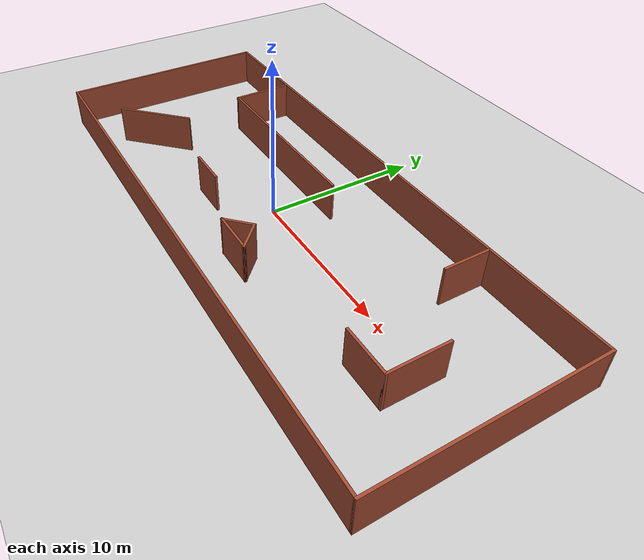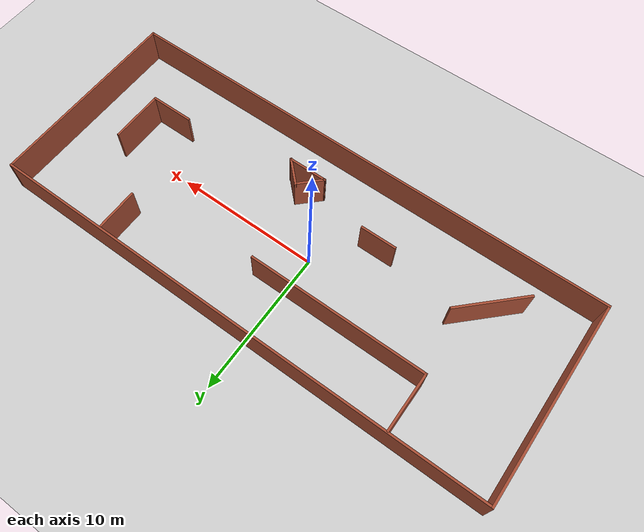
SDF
<sdf version="1.7">
 <world name="default">
  <light name="sun" type="directional">
   <pose>0 0 10 0 -0 0</pose>
   <diffuse>0.8 0.8 0.8 1</diffuse>
   <specular>0.2 0.2 0.2 1</specular>
   <attenuation>
    <range>1000</range>
    <constant>0.9</constant>
    <linear>0.01</linear>
    <quadratic>0.001</quadratic>
   </attenuation>
   <direction>-0.5 0.1 -0.9</direction>
   <spot><inner_angle>0</inner_angle><outer_angle>0</outer_angle><falloff>0</falloff></spot>
  </light>
  <model name="ground_plane">
   <static>1</static>
   <link name="link">
    <collision name="collision">
     <geometry><plane><normal>0 0 1</normal><size>100 100</size></plane></geometry>
     <surface>
      <contact><collide_bitmask>65535</collide_bitmask></contact>
      <friction><ode><mu>100</mu><mu2>50</mu2></ode></friction>
     </surface>
    </collision>
    <visual name="visual">
     <cast_shadows>0</cast_shadows>
     <geometry><plane><normal>0 0 1</normal><size>100 100</size></plane></geometry>
     <material>
      <script><uri>file://media/materials/scripts/gazebo.material</uri><name>Gazebo/Grey</name></script>
     </material>
    </visual>
   </link>
  </model>
  <gravity>0 0 -9.8</gravity>
  <magnetic_field>6e-06 2.3e-05 -4.2e-05</magnetic_field>
  <atmosphere type="adiabatic"/>
  <physics type="ode">
   <max_step_size>0.001</max_step_size>
   <real_time_factor>1</real_time_factor>
   <real_time_update_rate>1000</real_time_update_rate>
  </physics>
  <scene><ambient>0.4 0.4 0.4 1</ambient><background>0.7 0.7 0.7 1</background><shadows>1</shadows></scene>
  <spherical_coordinates>
   <surface_model>EARTH_WGS84</surface_model>
   <latitude_deg>0</latitude_deg>
   <longitude_deg>0</longitude_deg>
   <elevation>0</elevation>
   <heading_deg>0</heading_deg>
  </spherical_coordinates>
  <model name="mapa_03">
   <pose>1.17897 -0.178411 0 0 -0 0</pose>
   <link name="Wall_1">
    <collision name="Wall_1_Collision">
     <geometry><box><size>35 0.15 2.5</size></box></geometry>
     <pose>0 0 1.25 0 -0 0</pose>
    </collision>
    <visual name="Wall_1_Visual">
     <pose>0 0 1.25 0 -0 0</pose>
     <geometry><box><size>35 0.15 2.5</size></box></geometry>
     <material>
      <script><uri>file://media/materials/scripts/gazebo.material</uri><name>Gazebo/Bricks</name></script>
      <ambient>1 1 1 1</ambient>
     </material>
     <meta><layer>0</layer></meta>
    </visual>
    <pose>0 -6.8 0 0 -0 0</pose>
   </link>
   <link name="Wall_10">
    <collision name="Wall_10_Collision">
     <geometry><box><size>5 0.15 2.5</size></box></geometry>
     <pose>0 0 1.25 0 -0 0</pose>
    </collision>
    <visual name="Wall_10_Visual">
     <pose>0 0 1.25 0 -0 0</pose>
     <geometry><box><size>5 0.15 2.5</size></box></geometry>
     <material>
      <script><uri>file://media/materials/scripts/gazebo.material</uri><name>Gazebo/Bricks</name></script>
      <ambient>1 1 1 1</ambient>
     </material>
     <meta><layer>0</layer></meta>
    </visual>
    <pose>-11.8385 -3.05397 0 0 -0 0.785398</pose>
   </link>
   <link name="Wall_13">
    <collision name="Wall_13_Collision">
     <geometry><box><size>3 0.15 2.5</size></box></geometry>
     <pose>0 0 1.25 0 -0 0</pose>
    </collision>
    <visual name="Wall_13_Visual">
     <pose>0 0 1.25 0 -0 0</pose>
     <geometry><box><size>3 0.15 2.5</size></box></geometry>
     <material>
      <script><uri>file://media/materials/scripts/gazebo.material</uri><name>Gazebo/Bricks</name></script>
      <ambient>1 1 1 1</ambient>
     </material>
     <meta><layer>0</layer></meta>
    </visual>
    <pose>9.80309 5.29568 0 0 -0 -1.5708</pose>
   </link>
   <link name="Wall_16">
    <collision name="Wall_16_Collision">
     <geometry><box><size>2 0.15 2.5</size></box></geometry>
     <pose>0 0 1.25 0 -0 0</pose>
    </collision>
    <visual name="Wall_16_Visual">
     <pose>0 0 1.25 0 -0 0</pose>
     <geometry><box><size>2 0.15 2.5</size></box></geometry>
     <material>
      <script><uri>file://media/materials/scripts/gazebo.material</uri><name>Gazebo/Bricks</name></script>
      <ambient>1 1 1 1</ambient>
     </material>
     <meta><layer>0</layer></meta>
    </visual>
    <pose>1.39511 -3.4134 0 0 -0 0.785398</pose>
   </link>
   <link name="Wall_17">
    <collision name="Wall_17_Collision">
     <geometry><box><size>2 0.15 2.5</size></box></geometry>
     <pose>0 0 1.25 0 -0 0</pose>
    </collision>
    <visual name="Wall_17_Visual">
     <pose>0 0 1.25 0 -0 0</pose>
     <geometry><box><size>2 0.15 2.5</size></box></geometry>
     <material>
      <script><uri>file://media/materials/scripts/gazebo.material</uri><name>Gazebo/Bricks</name></script>
      <ambient>1 1 1 1</ambient>
     </material>
     <meta><layer>0</layer></meta>
    </visual>
    <pose>2.70326 -3.4134 0 0 -0 -0.785398</pose>
   </link>
   <link name="Wall_18">
    <collision name="Wall_18_Collision">
     <geometry><box><size>2.76629 0.15 2.5</size></box></geometry>
     <pose>0 0 1.25 0 -0 0</pose>
    </collision>
    <visual name="Wall_18_Visual">
     <pose>0 0 1.25 0 -0 0</pose>
     <geometry><box><size>2.76629 0.15 2.5</size></box></geometry>
     <material>
      <script><uri>file://media/materials/scripts/gazebo.material</uri><name>Gazebo/Bricks</name></script>
      <ambient>1 1 1 1</ambient>
     </material>
     <meta><layer>0</layer></meta>
    </visual>
    <pose>2.04919 -4.06747 0 0 -0 3.14159</pose>
   </link>
   <link name="Wall_2">
    <collision name="Wall_2_Collision">
     <geometry><box><size>13.75 0.15 2.5</size></box></geometry>
     <pose>0 0 1.25 0 -0 0</pose>
    </collision>
    <visual name="Wall_2_Visual">
     <pose>0 0 1.25 0 -0 0</pose>
     <geometry><box><size>13.75 0.15 2.5</size></box></geometry>
     <material>
      <script><uri>file://media/materials/scripts/gazebo.material</uri><name>Gazebo/Bricks</name></script>
      <ambient>1 1 1 1</ambient>
     </material>
     <meta><layer>0</layer></meta>
    </visual>
    <pose>17.425 0 0 0 -0 1.5708</pose>
   </link>
   <link name="Wall_21">
    <collision name="Wall_21_Collision">
     <geometry><box><size>3.75 0.15 2.5</size></box></geometry>
     <pose>0 0 1.25 0 -0 0</pose>
    </collision>
    <visual name="Wall_21_Visual">
     <pose>0 0 1.25 0 -0 0</pose>
     <geometry><box><size>3.75 0.15 2.5</size></box></geometry>
     <material>
      <script><uri>file://media/materials/scripts/gazebo.material</uri><name>Gazebo/Bricks</name></script>
      <ambient>1 1 1 1</ambient>
     </material>
     <meta><layer>0</layer></meta>
    </visual>
    <pose>13.525 -0.797043 0 0 -0 -1.5708</pose>
   </link>
   <link name="Wall_22">
    <collision name="Wall_22_Collision">
     <geometry><box><size>3 0.15 2.5</size></box></geometry>
     <pose>0 0 1.25 0 -0 0</pose>
    </collision>
    <visual name="Wall_22_Visual">
     <pose>0 0 1.25 0 -0 0</pose>
     <geometry><box><size>3 0.15 2.5</size></box></geometry>
     <material>
      <script><uri>file://media/materials/scripts/gazebo.material</uri><name>Gazebo/Bricks</name></script>
      <ambient>1 1 1 1</ambient>
     </material>
     <meta><layer>0</layer></meta>
    </visual>
    <pose>12.1 -2.59704 0 0 -0 3.14159</pose>
   </link>
   <link name="Wall_24">
    <collision name="Wall_24_Collision">
     <geometry><box><size>2.5 0.15 2.5</size></box></geometry>
     <pose>0 0 1.25 0 -0 0</pose>
    </collision>
    <visual name="Wall_24_Visual">
     <pose>0 0 1.25 0 -0 0</pose>
     <geometry><box><size>2.5 0.15 2.5</size></box></geometry>
     <material>
      <script><uri>file://media/materials/scripts/gazebo.material</uri><name>Gazebo/Bricks</name></script>
      <ambient>1 1 1 1</ambient>
     </material>
     <meta><layer>0</layer></meta>
    </visual>
    <pose>-4.23321 -2.66501 0 0 -0 0</pose>
   </link>
   <link name="Wall_4">
    <collision name="Wall_4_Collision">
     <geometry><box><size>35 0.15 2.5</size></box></geometry>
     <pose>0 0 1.25 0 -0 0</pose>
    </collision>
    <visual name="Wall_4_Visual">
     <pose>0 0 1.25 0 -0 0</pose>
     <geometry><box><size>35 0.15 2.5</size></box></geometry>
     <material>
      <script><uri>file://media/materials/scripts/gazebo.material</uri><name>Gazebo/Bricks</name></script>
      <ambient>1 1 1 1</ambient>
     </material>
     <meta><layer>0</layer></meta>
    </visual>
    <pose>0 6.8 0 0 -0 3.14159</pose>
   </link>
   <link name="Wall_5">
    <collision name="Wall_5_Collision">
     <geometry><box><size>13.75 0.15 2.5</size></box></geometry>
     <pose>0 0 1.25 0 -0 0</pose>
    </collision>
    <visual name="Wall_5_Visual">
     <pose>0 0 1.25 0 -0 0</pose>
     <geometry><box><size>13.75 0.15 2.5</size></box></geometry>
     <material>
      <script><uri>file://media/materials/scripts/gazebo.material</uri><name>Gazebo/Bricks</name></script>
      <ambient>1 1 1 1</ambient>
     </material>
     <meta><layer>0</layer></meta>
    </visual>
    <pose>-17.425 0 0 0 -0 -1.5708</pose>
   </link>
   <link name="Wall_7">
    <collision name="Wall_7_Collision">
     <geometry><box><size>4 0.15 2.5</size></box></geometry>
     <pose>0 0 1.25 0 -0 0</pose>
    </collision>
    <visual name="Wall_7_Visual">
     <pose>0 0 1.25 0 -0 0</pose>
     <geometry><box><size>4 0.15 2.5</size></box></geometry>
     <material>
      <script><uri>file://media/materials/scripts/gazebo.material</uri><name>Gazebo/Bricks</name></script>
      <ambient>1 1 1 1</ambient>
     </material>
     <meta><layer>0</layer></meta>
    </visual>
    <pose>-11.018 4.79568 0 0 -0 -1.5708</pose>
   </link>
   <link name="Wall_8">
    <collision name="Wall_8_Collision">
     <geometry><box><size>12.25 0.15 2.5</size></box></geometry>
     <pose>0 0 1.25 0 -0 0</pose>
    </collision>
    <visual name="Wall_8_Visual">
     <pose>0 0 1.25 0 -0 0</pose>
     <geometry><box><size>12.25 0.15 2.5</size></box></geometry>
     <material>
      <script><uri>file://media/materials/scripts/gazebo.material</uri><name>Gazebo/Bricks</name></script>
      <ambient>1 1 1 1</ambient>
     </material>
     <meta><layer>0</layer></meta>
    </visual>
    <pose>-4.96805 2.87068 0 0 -0 0</pose>
   </link>
   <static>1</static>
  </model>
 </world>
</sdf>
